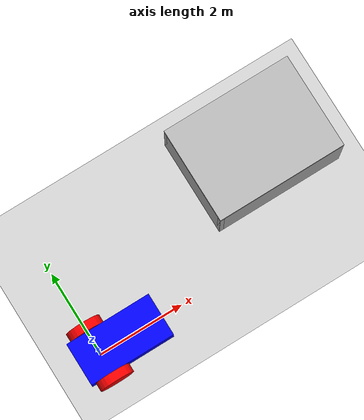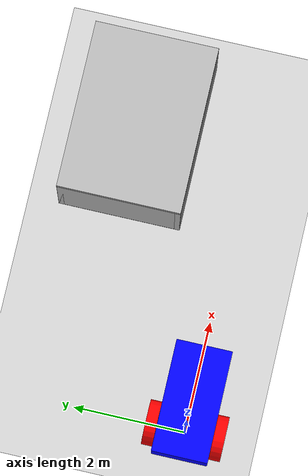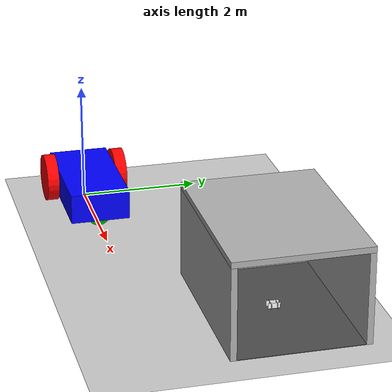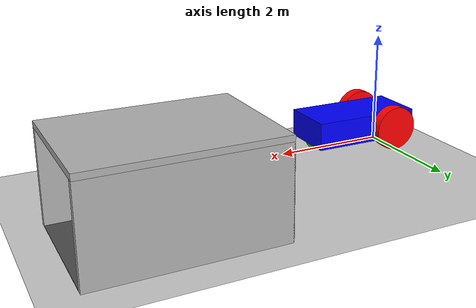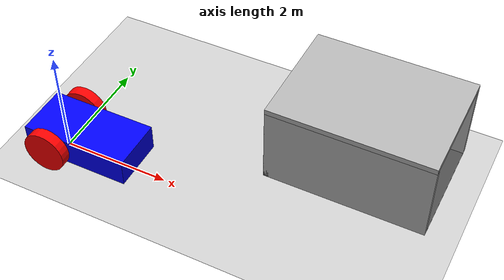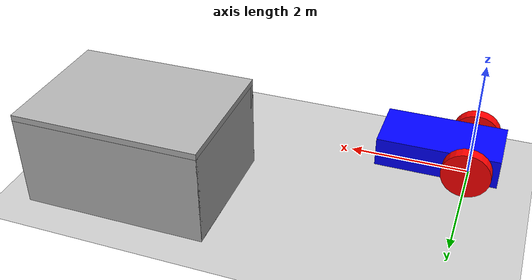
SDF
<?xml version="1.0" ?>
<sdf version="1.8">
  <world name="docking_world">
    <physics name="1ms" type="ignored">
      <max_step_size>0.001</max_step_size>
      <real_time_factor>5.0</real_time_factor>
    </physics>
    <plugin
      filename="gz-sim-physics-system"
      name="gz::sim::systems::Physics">
    </plugin>
    <plugin
      filename="gz-sim-user-commands-system"
      name="gz::sim::systems::UserCommands">
    </plugin>
    <plugin
      filename="gz-sim-scene-broadcaster-system"
      name="gz::sim::systems::SceneBroadcaster">
    </plugin>

    <light type="directional" name="sun">
      <cast_shadows>true</cast_shadows>
      <pose>0 0 10 0 0 0</pose>
      <diffuse>0.8 0.8 0.8 1</diffuse>
      <specular>0.2 0.2 0.2 1</specular>
      <attenuation> <range>1000</range> <constant>0.9</constant> <linear>0.01</linear> <quadratic>0.001</quadratic> </attenuation>
      <direction>-0.5 0.1 -0.9</direction>
    </light>

    <model name="ground_plane">
      <static>true</static>
      <link name="link">
        <collision name="collision"> <geometry> <plane> <normal>0 0 1</normal> </plane> </geometry> </collision>
        <visual name="visual"> <geometry> <plane> <normal>0 0 1</normal> <size>100 100</size> </plane> </geometry>
        <material> <ambient>0.8 0.8 0.8 1</ambient> <diffuse>0.8 0.8 0.8 1</diffuse> <specular>0.8 0.8 0.8 1</specular> </material> </visual>
      </link>
    </model>

<include>
  <uri>model://robot</uri>
  </include>

    <include>
      <uri>model://april_hut</uri>
      <pose>5 2 0 0 0 0</pose>
      </include>

  </world>
</sdf>

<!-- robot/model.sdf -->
<sdf version="1.8">
  <model name='robot' canonical_link='chassis'>
    <pose>0 0 0 0 0 0</pose>

    <link name='chassis'>
      <pose relative_to='__model__'>0.5 0 0.4 0 0 0</pose>
      <inertial> <mass>1.14395</mass> <inertia> <ixx>0.095329</ixx> <ixy>0</ixy> <ixz>0</ixz> <iyy>0.381317</iyy> <iyz>0</iyz> <izz>0.476646</izz> </inertia> </inertial>
      <visual name='visual'> <geometry> <box> <size>2.0 1.0 0.5</size> </box> </geometry> <material> <ambient>0.0 0.0 1.0 1</ambient> <diffuse>0.0 0.0 1.0 1</diffuse> <specular>0.0 0.0 1.0 1</specular> </material> </visual>
      <collision name='collision'> <geometry> <box> <size>2.0 1.0 0.5</size> </box> </geometry> </collision>

      <sensor name='camera_sensor' type='camera'>
        <pose>1.0 0 0.25 0 0 0</pose>
        <camera>
          <horizontal_fov>1.047</horizontal_fov>
          <image>
            <width>640</width>
            <height>480</height>
            <format>R8G8B8</format>
          </image>
          <clip>
            <near>0.1</near>
            <far>100</far>
          </clip>
        </camera>
        <update_rate>30</update_rate>
        <topic>/model/robot/camera</topic>
      </sensor>

    <sensor name='depth_sensor' type='depth_camera'>
  <pose>1.0 0 0.25 0 0 0</pose>
  <camera>
    <horizontal_fov>1.047</horizontal_fov>
    <image>
      <width>640</width>
      <height>480</height>
    </image>
    <clip>
      <near>0.1</near>
      <far>100</far>
    </clip>
  </camera>
  <update_rate>30</update_rate>
  <topic>/model/robot/depth_camera</topic>
</sensor>

</link>

    <link name='left_wheel'>
      <pose relative_to="chassis">-0.5 0.6 0 -1.5707 0 0</pose>
      <inertial> <mass>1</mass> <inertia> <ixx>0.043333</ixx> <ixy>0</ixy> <ixz>0</ixz> <iyy>0.043333</iyy> <iyz>0</iyz> <izz>0.08</izz> </inertia> </inertial>
      <visual name='visual'> <geometry> <cylinder> <radius>0.4</radius> <length>0.2</length> </cylinder> </geometry> <material> <ambient>1.0 0.0 0.0 1</ambient> <diffuse>1.0 0.0 0.0 1</diffuse> <specular>1.0 0.0 0.0 1</specular> </material> </visual>
      <collision name='collision'> <geometry> <cylinder> <radius>0.4</radius> <length>0.2</length> </cylinder> </geometry> </collision>
    </link>

    <link name='right_wheel'>
      <pose relative_to="chassis">-0.5 -0.6 0 -1.5707 0 0</pose>
      <inertial> <mass>1</mass> <inertia> <ixx>0.043333</ixx> <ixy>0</ixy> <ixz>0</ixz> <iyy>0.043333</iyy> <iyz>0</iyz> <izz>0.08</izz> </inertia> </inertial>
      <visual name='visual'> <geometry> <cylinder> <radius>0.4</radius> <length>0.2</length> </cylinder> </geometry> <material> <ambient>1.0 0.0 0.0 1</ambient> <diffuse>1.0 0.0 0.0 1</diffuse> <specular>1.0 0.0 0.0 1</specular> </material> </visual>
      <collision name='collision'> <geometry> <cylinder> <radius>0.4</radius> <length>0.2</length> </cylinder> </geometry> </collision>
    </link>

    <frame name="caster_frame" attached_to='chassis'> <pose>0.8 0 -0.2 0 0 0</pose> </frame>
    <link name='caster'>
      <pose relative_to='caster_frame'/>
      <inertial> <mass>1</mass> <inertia> <ixx>0.016</ixx> <ixy>0</ixy> <ixz>0</ixz> <iyy>0.016</iyy> <iyz>0</iyz> <izz>0.016</izz> </inertia> </inertial>
      <visual name='visual'> <geometry> <sphere> <radius>0.2</radius> </sphere> </geometry> <material> <ambient>0.0 1 0.0 1</ambient> <diffuse>0.0 1 0.0 1</diffuse> <specular>0.0 1 0.0 1</specular> </material> </visual>
      <collision name='collision'> <geometry> <sphere> <radius>0.2</radius> </sphere> </geometry> </collision>
    </link>

    <joint name='left_wheel_joint' type='revolute'>
      <pose relative_to='left_wheel'/>
      <parent>chassis</parent>
      <child>left_wheel</child>
      <axis> <xyz expressed_in='__model__'>0 1 0</xyz> <limit> <lower>-1.79769e+308</lower> <upper>1.79769e+308</upper> </limit> </axis>
    </joint>
    <joint name='right_wheel_joint' type='revolute'>
      <pose relative_to='right_wheel'/>
      <parent>chassis</parent>
      <child>right_wheel</child>
      <axis> <xyz expressed_in='__model__'>0 1 0</xyz> <limit> <lower>-1.79769e+308</lower> <upper>1.79769e+308</upper> </limit> </axis>
    </joint>
    <joint name='caster_wheel' type='ball'>
      <parent>chassis</parent>
      <child>caster</child>
    </joint>

    <plugin
      filename="gz-sim-diff-drive-system"
      name="gz::sim::systems::DiffDrive">
      <left_joint>left_wheel_joint</left_joint>
      <right_joint>right_wheel_joint</right_joint>
      <wheel_separation>1.2</wheel_separation> <wheel_radius>0.4</wheel_radius>

      <odom_topic>/model/robot/odom_nav</odom_topic>
    </plugin>

    <plugin
      filename="gz-sim-joint-state-publisher-system"
      name="gz::sim::systems::JointStatePublisher">
    </plugin>

    <plugin
       filename="gz-sim-sensors-system"
       name="gz::sim::systems::Sensors">
    </plugin>

    <plugin
  filename="gz-sim-odometry-publisher-system"
  name="gz::sim::systems::OdometryPublisher">
  <odom_frame>world</odom_frame>
  <robot_base_frame>chassis</robot_base_frame>
  <dimensions>3</dimensions>
  <update_frequency>50</update_frequency>
</plugin>

  </model>
</sdf>

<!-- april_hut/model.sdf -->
<sdf version="1.8">
  <model name="april_hut">
    <static>true</static>
    <pose>0 0 0 0 0 0</pose>

    <link name="floor_plane">
      <pose>0 0 0.005 0 0 0</pose>
      <visual name="visual">
        <geometry>
          <box>
            <size>3.0 2.0 0.01</size>
          </box>
        </geometry>
        <material>
          <ambient>0.3 0.3 0.3 1</ambient>
          <diffuse>0.3 0.3 0.3 1</diffuse>
          <specular>0.1 0.1 0.1 1</specular>
        </material>
      </visual>
      <collision name="collision">
        <geometry>
          <box>
            <size>3.0 2.0 0.01</size>
          </box>
        </geometry>
      </collision>
    </link>

    <link name="back_wall">
      <pose>-1.45 0 0.75 0 0 0</pose> <visual name="visual">
        <geometry>
          <box>
            <size>0.1 2.2 1.5</size> </box>
        </geometry>
        <material>
          <ambient>0.7 0.7 0.7 1</ambient>
          <diffuse>0.7 0.7 0.7 1</diffuse>
          <specular>0.5 0.5 0.5 1</specular>
        </material>
      </visual>
      <collision name="collision">
        <geometry>
          <box>
            <size>0.1 2.2 1.5</size>
          </box>
        </geometry>
      </collision>
    </link>

    <link name="left_wall">
      <pose>0 1.05 0.75 0 0 0</pose> <visual name="visual">
        <geometry>
          <box>
            <size>3.0 0.1 1.5</size> </box>
        </geometry>
        <material>
          <ambient>0.7 0.7 0.7 1</ambient>
          <diffuse>0.7 0.7 0.7 1</diffuse>
          <specular>0.5 0.5 0.5 1</specular>
        </material>
      </visual>
      <collision name="collision">
        <geometry>
          <box>
            <size>3.0 0.1 1.5</size>
          </box>
        </geometry>
      </collision>
    </link>

    <link name="right_wall">
      <pose>0 -1.05 0.75 0 0 0</pose> <visual name="visual">
        <geometry>
          <box>
            <size>3.0 0.1 1.5</size> </box>
        </geometry>
        <material>
          <ambient>0.7 0.7 0.7 1</ambient>
          <diffuse>0.7 0.7 0.7 1</diffuse>
          <specular>0.5 0.5 0.5 1</specular>
        </material>
      </visual>
      <collision name="collision">
        <geometry>
          <box>
            <size>3.0 0.1 1.5</size>
          </box>
        </geometry>
      </collision>
    </link>

    <link name="roof">
      <pose>0 0 1.55 0 0 0</pose> <visual name="visual">
        <geometry>
          <box>
            <size>3.0 2.2 0.1</size> </box>
        </geometry>
        <material>
          <ambient>0.7 0.7 0.7 1</ambient>
          <diffuse>0.7 0.7 0.7 1</diffuse>
          <specular>0.5 0.5 0.5 1</specular>
        </material>
      </visual>
      <collision name="collision">
        <geometry>
          <box>
            <size>3.0 2.2 0.1</size>
          </box>
        </geometry>
      </collision>
    </link>

    <include>
      <name>tag_inner_back</name>
      <uri>model://Apriltag36_11_00001</uri>
      <pose relative_to="back_wall">0.051 0 0 0 -1.5708 0</pose> </include>

    <include>
      <name>tag_outer_back</name>
      <uri>model://Apriltag36_11_00002</uri>
      <pose relative_to="back_wall">-0.051 0 0 0 1.5708 0</pose> </include>

    <include>
      <name>tag_outer_left</name>
      <uri>model://Apriltag36_11_00003</uri>
      <pose relative_to="left_wall">0 0.051 0 1.5708 0 0</pose> </include>

    <include>
      <name>tag_outer_right</name>
      <uri>model://Apriltag36_11_00004</uri>
      <pose relative_to="right_wall">0 -0.051 0 -1.5708 0 0</pose> </include>

  </model>
</sdf>

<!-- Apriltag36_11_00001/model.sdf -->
<sdf version="1.9">
  <model name="tag36_11_00001">
    <static>true</static>
    <link name="link">
      <visual name="visual">
        <geometry>
          <box>
            <size>0.2 0.2 0.001</size>
          </box>
        </geometry>
        <material>
        	<ambient>1 1 1 1</ambient>
        	<diffuse>1 1 1 1</diffuse>
        	<specular>0.1 0.1 0.1 1</specular>
        	<!-- Neuer Teil: -->
        	<pbr>
            		<metal>
              			<albedo_map>model://Apriltag36_11_00001/materials/textures/tag36_11_00001.png</albedo_map>
              			<roughness>0.5</roughness>
              			<metalness>0.0</metalness>
            		</metal>
          	</pbr>

        </material>
      </visual>
      <collision name="collision">
        <geometry>
          <box>
            <size>0.2 0.2 0.001</size>
          </box>
        </geometry>
      </collision>
    </link>
  </model>
</sdf>

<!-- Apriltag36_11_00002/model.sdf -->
<sdf version="1.9">
  <model name="tag36_11_00002">
    <static>true</static>
    <link name="link">
      <visual name="visual">
        <geometry>
          <box>
            <size>0.2 0.2 0.001</size>
          </box>
        </geometry>
        <material>
        	<ambient>1 1 1 1</ambient>
        	<diffuse>1 1 1 1</diffuse>
        	<specular>0.1 0.1 0.1 1</specular>
        	<!-- Neuer Teil: -->
        	<pbr>
            		<metal>
              			<albedo_map>model://Apriltag36_11_00002/materials/textures/tag36_11_00002.png</albedo_map>
              			<roughness>0.5</roughness>
              			<metalness>0.0</metalness>
            		</metal>
          	</pbr>

        </material>
      </visual>
      <collision name="collision">
        <geometry>
          <box>
            <size>0.2 0.2 0.001</size>
          </box>
        </geometry>
      </collision>
    </link>
  </model>
</sdf>

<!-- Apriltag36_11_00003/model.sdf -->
<sdf version="1.9">
  <model name="tag36_11_00003">
    <static>true</static>
    <link name="link">
      <visual name="visual">
        <geometry>
          <box>
            <size>0.2 0.2 0.001</size>
          </box>
        </geometry>
        <material>
        	<ambient>1 1 1 1</ambient>
        	<diffuse>1 1 1 1</diffuse>
        	<specular>0.1 0.1 0.1 1</specular>
        	<!-- Neuer Teil: -->
        	<pbr>
            		<metal>
              			<albedo_map>model://Apriltag36_11_00003/materials/textures/tag36_11_00003.png</albedo_map>
              			<roughness>0.5</roughness>
              			<metalness>0.0</metalness>
            		</metal>
          	</pbr>

        </material>
      </visual>
      <collision name="collision">
        <geometry>
          <box>
            <size>0.2 0.2 0.001</size>
          </box>
        </geometry>
      </collision>
    </link>
  </model>
</sdf>

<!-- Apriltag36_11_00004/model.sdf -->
<sdf version="1.9">
  <model name="tag36_11_00004">
    <static>true</static>
    <link name="link">
      <visual name="visual">
        <geometry>
          <box>
            <size>0.2 0.2 0.001</size>
          </box>
        </geometry>
        <material>
        	<ambient>1 1 1 1</ambient>
        	<diffuse>1 1 1 1</diffuse>
        	<specular>0.1 0.1 0.1 1</specular>
        	<!-- Neuer Teil: -->
        	<pbr>
            		<metal>
              			<albedo_map>model://Apriltag36_11_00004/materials/textures/tag36_11_00004.png</albedo_map>
              			<roughness>0.5</roughness>
              			<metalness>0.0</metalness>
            		</metal>
          	</pbr>

        </material>
      </visual>
      <collision name="collision">
        <geometry>
          <box>
            <size>0.2 0.2 0.001</size>
          </box>
        </geometry>
      </collision>
    </link>
  </model>
</sdf>
